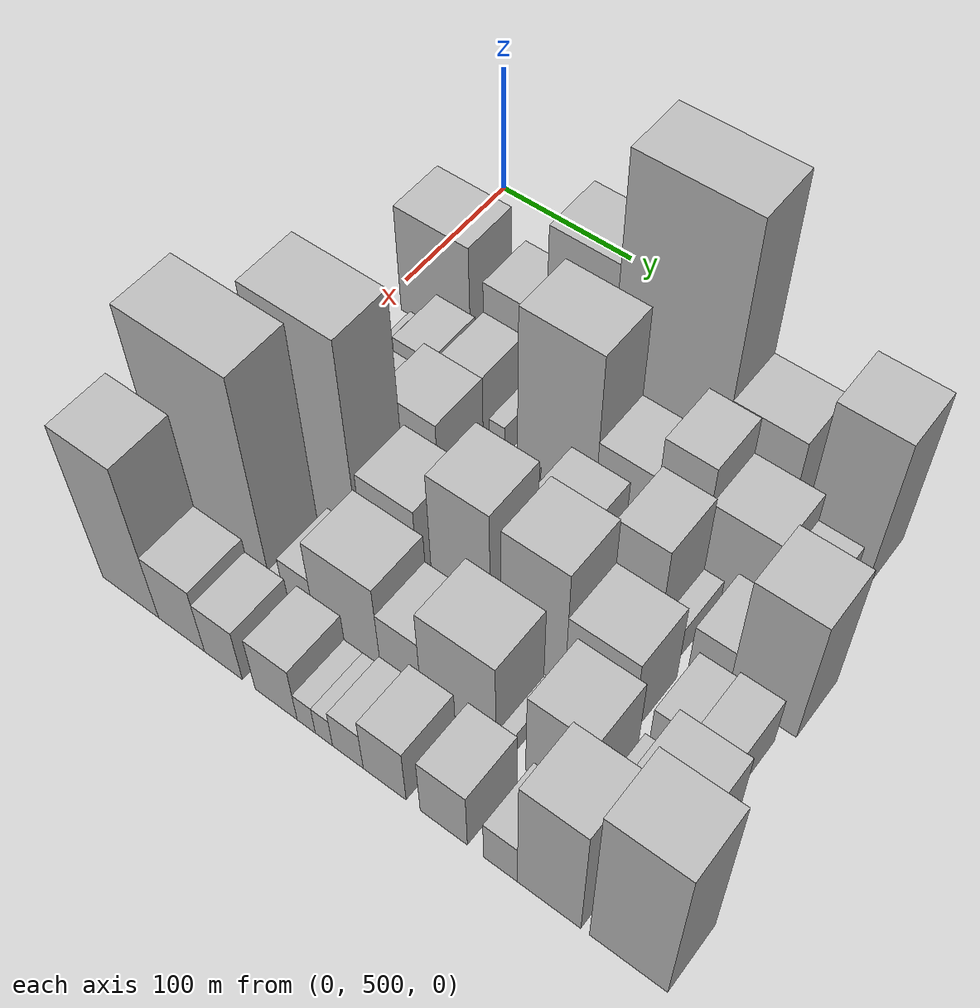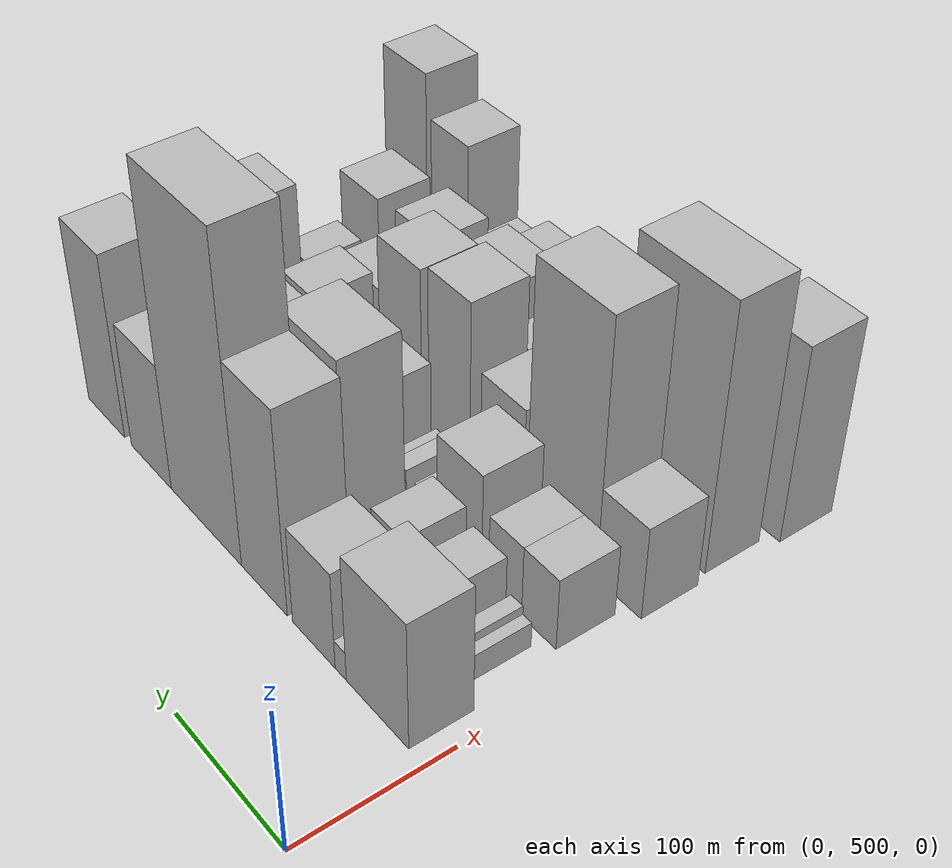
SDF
<sdf version="1.6">
 <world name="default">
  <model name="building_41">
   <static>1</static>
   <pose>100.0000 539.8576 0 0.000000 0.000000 0.000000</pose>
   <link name="link">
    <pose>0 0 45.00 0 0 0</pose>
    <collision name="collision"><geometry><box><size>40.0000 53.8695 90.0000</size></box></geometry></collision>
    <visual name="visual">
     <cast_shadows>0</cast_shadows>
     <geometry><box><size>40.0000 53.8695 90.0000</size></box></geometry>
     <material>
      <script>
       <uri>model://HANNAS_wall/materials/scripts</uri>
       <uri>model://HANNAS_wall/materials/textures</uri>
       <name>vrc/HANNAS_wall</name>
      </script>
     </material>
    </visual>
   </link>
  </model>
  <model name="building_42">
   <static>1</static>
   <pose>100.0000 571.8155 0 0.000000 0.000000 0.000000</pose>
   <link name="link">
    <pose>0 0 10.50 0 0 0</pose>
    <collision name="collision"><geometry><box><size>40.0000 10.0463 21.0000</size></box></geometry></collision>
    <visual name="visual">
     <cast_shadows>0</cast_shadows>
     <geometry><box><size>40.0000 10.0463 21.0000</size></box></geometry>
     <material>
      <script>
       <uri>model://HANNAS_wall/materials/scripts</uri>
       <uri>model://HANNAS_wall/materials/textures</uri>
       <name>vrc/HANNAS_wall</name>
      </script>
     </material>
    </visual>
   </link>
  </model>
  <model name="building_43">
   <static>1</static>
   <pose>100.0000 596.6419 0 0.000000 0.000000 0.000000</pose>
   <link name="link">
    <pose>0 0 34.50 0 0 0</pose>
    <collision name="collision"><geometry><box><size>40.0000 39.6066 69.0000</size></box></geometry></collision>
    <visual name="visual">
     <cast_shadows>0</cast_shadows>
     <geometry><box><size>40.0000 39.6066 69.0000</size></box></geometry>
     <material>
      <script>
       <uri>model://HANNAS_wall/materials/scripts</uri>
       <uri>model://HANNAS_wall/materials/textures</uri>
       <name>vrc/HANNAS_wall</name>
      </script>
     </material>
    </visual>
   </link>
  </model>
  <model name="building_44">
   <static>1</static>
   <pose>100.0000 643.9634 0 0.000000 0.000000 0.000000</pose>
   <link name="link">
    <pose>0 0 72.00 0 0 0</pose>
    <collision name="collision"><geometry><box><size>40.0000 45.0365 144.0000</size></box></geometry></collision>
    <visual name="visual">
     <cast_shadows>0</cast_shadows>
     <geometry><box><size>40.0000 45.0365 144.0000</size></box></geometry>
     <material>
      <script>
       <uri>model://HANNAS_wall/materials/scripts</uri>
       <uri>model://HANNAS_wall/materials/textures</uri>
       <name>vrc/HANNAS_wall</name>
      </script>
     </material>
    </visual>
   </link>
  </model>
  <model name="building_45">
   <static>1</static>
   <pose>100.0000 703.7926 0 0.000000 0.000000 0.000000</pose>
   <link name="link">
    <pose>0 0 112.50 0 0 0</pose>
    <collision name="collision"><geometry><box><size>40.0000 74.6218 225.0000</size></box></geometry></collision>
    <visual name="visual">
     <cast_shadows>0</cast_shadows>
     <geometry><box><size>40.0000 74.6218 225.0000</size></box></geometry>
     <material>
      <script>
       <uri>model://HANNAS_wall/materials/scripts</uri>
       <uri>model://HANNAS_wall/materials/textures</uri>
       <name>vrc/HANNAS_wall</name>
      </script>
     </material>
    </visual>
   </link>
  </model>
  <model name="building_46">
   <static>1</static>
   <pose>100.0000 763.8912 0 0.000000 0.000000 0.000000</pose>
   <link name="link">
    <pose>0 0 45.00 0 0 0</pose>
    <collision name="collision"><geometry><box><size>40.0000 45.5754 90.0000</size></box></geometry></collision>
    <visual name="visual">
     <cast_shadows>0</cast_shadows>
     <geometry><box><size>40.0000 45.5754 90.0000</size></box></geometry>
     <material>
      <script>
       <uri>model://HANNAS_wall/materials/scripts</uri>
       <uri>model://HANNAS_wall/materials/textures</uri>
       <name>vrc/HANNAS_wall</name>
      </script>
     </material>
    </visual>
   </link>
  </model>
  <model name="building_47">
   <static>1</static>
   <pose>100.0000 816.3652 0 0.000000 0.000000 0.000000</pose>
   <link name="link">
    <pose>0 0 66.00 0 0 0</pose>
    <collision name="collision"><geometry><box><size>40.0000 43.3727 132.0000</size></box></geometry></collision>
    <visual name="visual">
     <cast_shadows>0</cast_shadows>
     <geometry><box><size>40.0000 43.3727 132.0000</size></box></geometry>
     <material>
      <script>
       <uri>model://HANNAS_wall/materials/scripts</uri>
       <uri>model://HANNAS_wall/materials/textures</uri>
       <name>vrc/HANNAS_wall</name>
      </script>
     </material>
    </visual>
   </link>
  </model>
  <model name="building_85">
   <static>1</static>
   <pose>149.0000 532.1612 0 0.000000 0.000000 0.000000</pose>
   <link name="link">
    <pose>0 0 9.00 0 0 0</pose>
    <collision name="collision"><geometry><box><size>40.0000 7.4489 18.0000</size></box></geometry></collision>
    <visual name="visual">
     <cast_shadows>0</cast_shadows>
     <geometry><box><size>40.0000 7.4489 18.0000</size></box></geometry>
     <material>
      <script>
       <uri>model://HANNAS_wall/materials/scripts</uri>
       <uri>model://HANNAS_wall/materials/textures</uri>
       <name>vrc/HANNAS_wall</name>
      </script>
     </material>
    </visual>
   </link>
  </model>
  <model name="building_86">
   <static>1</static>
   <pose>149.0000 540.8552 0 0.000000 0.000000 0.000000</pose>
   <link name="link">
    <pose>0 0 12.00 0 0 0</pose>
    <collision name="collision"><geometry><box><size>40.0000 9.9391 24.0000</size></box></geometry></collision>
    <visual name="visual">
     <cast_shadows>0</cast_shadows>
     <geometry><box><size>40.0000 9.9391 24.0000</size></box></geometry>
     <material>
      <script>
       <uri>model://HANNAS_wall/materials/scripts</uri>
       <uri>model://HANNAS_wall/materials/textures</uri>
       <name>vrc/HANNAS_wall</name>
      </script>
     </material>
    </visual>
   </link>
  </model>
  <model name="building_87">
   <static>1</static>
   <pose>149.0000 563.7792 0 0.000000 0.000000 0.000000</pose>
   <link name="link">
    <pose>0 0 24.00 0 0 0</pose>
    <collision name="collision"><geometry><box><size>40.0000 27.9090 48.0000</size></box></geometry></collision>
    <visual name="visual">
     <cast_shadows>0</cast_shadows>
     <geometry><box><size>40.0000 27.9090 48.0000</size></box></geometry>
     <material>
      <script>
       <uri>model://HANNAS_wall/materials/scripts</uri>
       <uri>model://HANNAS_wall/materials/textures</uri>
       <name>vrc/HANNAS_wall</name>
      </script>
     </material>
    </visual>
   </link>
  </model>
  <model name="building_88">
   <static>1</static>
   <pose>149.0000 580.9010 0 0.000000 0.000000 0.000000</pose>
   <link name="link">
    <pose>0 0 7.50 0 0 0</pose>
    <collision name="collision"><geometry><box><size>40.0000 6.3346 15.0000</size></box></geometry></collision>
    <visual name="visual">
     <cast_shadows>0</cast_shadows>
     <geometry><box><size>40.0000 6.3346 15.0000</size></box></geometry>
     <material>
      <script>
       <uri>model://HANNAS_wall/materials/scripts</uri>
       <uri>model://HANNAS_wall/materials/textures</uri>
       <name>vrc/HANNAS_wall</name>
      </script>
     </material>
    </visual>
   </link>
  </model>
  <model name="building_89">
   <static>1</static>
   <pose>149.0000 598.3968 0 0.000000 0.000000 0.000000</pose>
   <link name="link">
    <pose>0 0 28.50 0 0 0</pose>
    <collision name="collision"><geometry><box><size>40.0000 28.6569 57.0000</size></box></geometry></collision>
    <visual name="visual">
     <cast_shadows>0</cast_shadows>
     <geometry><box><size>40.0000 28.6569 57.0000</size></box></geometry>
     <material>
      <script>
       <uri>model://HANNAS_wall/materials/scripts</uri>
       <uri>model://HANNAS_wall/materials/textures</uri>
       <name>vrc/HANNAS_wall</name>
      </script>
     </material>
    </visual>
   </link>
  </model>
  <model name="building_90">
   <static>1</static>
   <pose>149.0000 624.2394 0 0.000000 0.000000 0.000000</pose>
   <link name="link">
    <pose>0 0 13.50 0 0 0</pose>
    <collision name="collision"><geometry><box><size>40.0000 11.0282 27.0000</size></box></geometry></collision>
    <visual name="visual">
     <cast_shadows>0</cast_shadows>
     <geometry><box><size>40.0000 11.0282 27.0000</size></box></geometry>
     <material>
      <script>
       <uri>model://HANNAS_wall/materials/scripts</uri>
       <uri>model://HANNAS_wall/materials/textures</uri>
       <name>vrc/HANNAS_wall</name>
      </script>
     </material>
    </visual>
   </link>
  </model>
  <model name="building_91">
   <static>1</static>
   <pose>149.0000 665.6713 0 0.000000 0.000000 0.000000</pose>
   <link name="link">
    <pose>0 0 69.00 0 0 0</pose>
    <collision name="collision"><geometry><box><size>40.0000 53.8358 138.0000</size></box></geometry></collision>
    <visual name="visual">
     <cast_shadows>0</cast_shadows>
     <geometry><box><size>40.0000 53.8358 138.0000</size></box></geometry>
     <material>
      <script>
       <uri>model://HANNAS_wall/materials/scripts</uri>
       <uri>model://HANNAS_wall/materials/textures</uri>
       <name>vrc/HANNAS_wall</name>
      </script>
     </material>
    </visual>
   </link>
  </model>
  <model name="building_92">
   <static>1</static>
   <pose>149.0000 711.7109 0 0.000000 0.000000 0.000000</pose>
   <link name="link">
    <pose>0 0 33.00 0 0 0</pose>
    <collision name="collision"><geometry><box><size>40.0000 38.2434 66.0000</size></box></geometry></collision>
    <visual name="visual">
     <cast_shadows>0</cast_shadows>
     <geometry><box><size>40.0000 38.2434 66.0000</size></box></geometry>
     <material>
      <script>
       <uri>model://HANNAS_wall/materials/scripts</uri>
       <uri>model://HANNAS_wall/materials/textures</uri>
       <name>vrc/HANNAS_wall</name>
      </script>
     </material>
    </visual>
   </link>
  </model>
  <model name="building_93">
   <static>1</static>
   <pose>149.0000 746.6212 0 0.000000 0.000000 0.000000</pose>
   <link name="link">
    <pose>0 0 51.00 0 0 0</pose>
    <collision name="collision"><geometry><box><size>40.0000 31.5770 102.0000</size></box></geometry></collision>
    <visual name="visual">
     <cast_shadows>0</cast_shadows>
     <geometry><box><size>40.0000 31.5770 102.0000</size></box></geometry>
     <material>
      <script>
       <uri>model://HANNAS_wall/materials/scripts</uri>
       <uri>model://HANNAS_wall/materials/textures</uri>
       <name>vrc/HANNAS_wall</name>
      </script>
     </material>
    </visual>
   </link>
  </model>
  <model name="building_94">
   <static>1</static>
   <pose>149.0000 783.8165 0 0.000000 0.000000 0.000000</pose>
   <link name="link">
    <pose>0 0 36.00 0 0 0</pose>
    <collision name="collision"><geometry><box><size>40.0000 42.8137 72.0000</size></box></geometry></collision>
    <visual name="visual">
     <cast_shadows>0</cast_shadows>
     <geometry><box><size>40.0000 42.8137 72.0000</size></box></geometry>
     <material>
      <script>
       <uri>model://HANNAS_wall/materials/scripts</uri>
       <uri>model://HANNAS_wall/materials/textures</uri>
       <name>vrc/HANNAS_wall</name>
      </script>
     </material>
    </visual>
   </link>
  </model>
  <model name="building_95">
   <static>1</static>
   <pose>149.0000 819.0038 0 0.000000 0.000000 0.000000</pose>
   <link name="link">
    <pose>0 0 24.00 0 0 0</pose>
    <collision name="collision"><geometry><box><size>40.0000 27.5608 48.0000</size></box></geometry></collision>
    <visual name="visual">
     <cast_shadows>0</cast_shadows>
     <geometry><box><size>40.0000 27.5608 48.0000</size></box></geometry>
     <material>
      <script>
       <uri>model://HANNAS_wall/materials/scripts</uri>
       <uri>model://HANNAS_wall/materials/textures</uri>
       <name>vrc/HANNAS_wall</name>
      </script>
     </material>
    </visual>
   </link>
  </model>
  <model name="building_136">
   <static>1</static>
   <pose>198.0000 533.3489 0 0.000000 0.000000 0.000000</pose>
   <link name="link">
    <pose>0 0 25.50 0 0 0</pose>
    <collision name="collision"><geometry><box><size>40.0000 28.4563 51.0000</size></box></geometry></collision>
    <visual name="visual">
     <cast_shadows>0</cast_shadows>
     <geometry><box><size>40.0000 28.4563 51.0000</size></box></geometry>
     <material>
      <script>
       <uri>model://HANNAS_wall/materials/scripts</uri>
       <uri>model://HANNAS_wall/materials/textures</uri>
       <name>vrc/HANNAS_wall</name>
      </script>
     </material>
    </visual>
   </link>
  </model>
  <model name="building_137">
   <static>1</static>
   <pose>198.0000 561.6796 0 0.000000 0.000000 0.000000</pose>
   <link name="link">
    <pose>0 0 25.50 0 0 0</pose>
    <collision name="collision"><geometry><box><size>40.0000 28.2052 51.0000</size></box></geometry></collision>
    <visual name="visual">
     <cast_shadows>0</cast_shadows>
     <geometry><box><size>40.0000 28.2052 51.0000</size></box></geometry>
     <material>
      <script>
       <uri>model://HANNAS_wall/materials/scripts</uri>
       <uri>model://HANNAS_wall/materials/textures</uri>
       <name>vrc/HANNAS_wall</name>
      </script>
     </material>
    </visual>
   </link>
  </model>
  <model name="building_138">
   <static>1</static>
   <pose>198.0000 601.6888 0 0.000000 0.000000 0.000000</pose>
   <link name="link">
    <pose>0 0 37.50 0 0 0</pose>
    <collision name="collision"><geometry><box><size>40.0000 39.8132 75.0000</size></box></geometry></collision>
    <visual name="visual">
     <cast_shadows>0</cast_shadows>
     <geometry><box><size>40.0000 39.8132 75.0000</size></box></geometry>
     <material>
      <script>
       <uri>model://HANNAS_wall/materials/scripts</uri>
       <uri>model://HANNAS_wall/materials/textures</uri>
       <name>vrc/HANNAS_wall</name>
      </script>
     </material>
    </visual>
   </link>
  </model>
  <model name="building_139">
   <static>1</static>
   <pose>198.0000 636.9009 0 0.000000 0.000000 0.000000</pose>
   <link name="link">
    <pose>0 0 12.00 0 0 0</pose>
    <collision name="collision"><geometry><box><size>40.0000 10.6111 24.0000</size></box></geometry></collision>
    <visual name="visual">
     <cast_shadows>0</cast_shadows>
     <geometry><box><size>40.0000 10.6111 24.0000</size></box></geometry>
     <material>
      <script>
       <uri>model://HANNAS_wall/materials/scripts</uri>
       <uri>model://HANNAS_wall/materials/textures</uri>
       <name>vrc/HANNAS_wall</name>
      </script>
     </material>
    </visual>
   </link>
  </model>
  <model name="building_140">
   <static>1</static>
   <pose>198.0000 656.0282 0 0.000000 0.000000 0.000000</pose>
   <link name="link">
    <pose>0 0 13.50 0 0 0</pose>
    <collision name="collision"><geometry><box><size>40.0000 11.6434 27.0000</size></box></geometry></collision>
    <visual name="visual">
     <cast_shadows>0</cast_shadows>
     <geometry><box><size>40.0000 11.6434 27.0000</size></box></geometry>
     <material>
      <script>
       <uri>model://HANNAS_wall/materials/scripts</uri>
       <uri>model://HANNAS_wall/materials/textures</uri>
       <name>vrc/HANNAS_wall</name>
      </script>
     </material>
    </visual>
   </link>
  </model>
  <model name="building_141">
   <static>1</static>
   <pose>198.0000 672.5311 0 0.000000 0.000000 0.000000</pose>
   <link name="link">
    <pose>0 0 9.00 0 0 0</pose>
    <collision name="collision"><geometry><box><size>40.0000 7.3623 18.0000</size></box></geometry></collision>
    <visual name="visual">
     <cast_shadows>0</cast_shadows>
     <geometry><box><size>40.0000 7.3623 18.0000</size></box></geometry>
     <material>
      <script>
       <uri>model://HANNAS_wall/materials/scripts</uri>
       <uri>model://HANNAS_wall/materials/textures</uri>
       <name>vrc/HANNAS_wall</name>
      </script>
     </material>
    </visual>
   </link>
  </model>
  <model name="building_142">
   <static>1</static>
   <pose>198.0000 700.0748 0 0.000000 0.000000 0.000000</pose>
   <link name="link">
    <pose>0 0 31.50 0 0 0</pose>
    <collision name="collision"><geometry><box><size>40.0000 37.7250 63.0000</size></box></geometry></collision>
    <visual name="visual">
     <cast_shadows>0</cast_shadows>
     <geometry><box><size>40.0000 37.7250 63.0000</size></box></geometry>
     <material>
      <script>
       <uri>model://HANNAS_wall/materials/scripts</uri>
       <uri>model://HANNAS_wall/materials/textures</uri>
       <name>vrc/HANNAS_wall</name>
      </script>
     </material>
    </visual>
   </link>
  </model>
  <model name="building_143">
   <static>1</static>
   <pose>198.0000 727.6551 0 0.000000 0.000000 0.000000</pose>
   <link name="link">
    <pose>0 0 15.00 0 0 0</pose>
    <collision name="collision"><geometry><box><size>40.0000 17.4356 30.0000</size></box></geometry></collision>
    <visual name="visual">
     <cast_shadows>0</cast_shadows>
     <geometry><box><size>40.0000 17.4356 30.0000</size></box></geometry>
     <material>
      <script>
       <uri>model://HANNAS_wall/materials/scripts</uri>
       <uri>model://HANNAS_wall/materials/textures</uri>
       <name>vrc/HANNAS_wall</name>
      </script>
     </material>
    </visual>
   </link>
  </model>
  <model name="building_144">
   <static>1</static>
   <pose>198.0000 752.6015 0 0.000000 0.000000 0.000000</pose>
   <link name="link">
    <pose>0 0 46.50 0 0 0</pose>
    <collision name="collision"><geometry><box><size>40.0000 32.4572 93.0000</size></box></geometry></collision>
    <visual name="visual">
     <cast_shadows>0</cast_shadows>
     <geometry><box><size>40.0000 32.4572 93.0000</size></box></geometry>
     <material>
      <script>
       <uri>model://HANNAS_wall/materials/scripts</uri>
       <uri>model://HANNAS_wall/materials/textures</uri>
       <name>vrc/HANNAS_wall</name>
      </script>
     </material>
    </visual>
   </link>
  </model>
  <model name="building_145">
   <static>1</static>
   <pose>198.0000 775.1160 0 0.000000 0.000000 0.000000</pose>
   <link name="link">
    <pose>0 0 13.50 0 0 0</pose>
    <collision name="collision"><geometry><box><size>40.0000 12.5717 27.0000</size></box></geometry></collision>
    <visual name="visual">
     <cast_shadows>0</cast_shadows>
     <geometry><box><size>40.0000 12.5717 27.0000</size></box></geometry>
     <material>
      <script>
       <uri>model://HANNAS_wall/materials/scripts</uri>
       <uri>model://HANNAS_wall/materials/textures</uri>
       <name>vrc/HANNAS_wall</name>
      </script>
     </material>
    </visual>
   </link>
  </model>
  <model name="building_146">
   <static>1</static>
   <pose>198.0000 800.6657 0 0.000000 0.000000 0.000000</pose>
   <link name="link">
    <pose>0 0 21.00 0 0 0</pose>
    <collision name="collision"><geometry><box><size>40.0000 24.5278 42.0000</size></box></geometry></collision>
    <visual name="visual">
     <cast_shadows>0</cast_shadows>
     <geometry><box><size>40.0000 24.5278 42.0000</size></box></geometry>
     <material>
      <script>
       <uri>model://HANNAS_wall/materials/scripts</uri>
       <uri>model://HANNAS_wall/materials/textures</uri>
       <name>vrc/HANNAS_wall</name>
      </script>
     </material>
    </visual>
   </link>
  </model>
  <model name="building_147">
   <static>1</static>
   <pose>198.0000 833.6380 0 0.000000 0.000000 0.000000</pose>
   <link name="link">
    <pose>0 0 55.50 0 0 0</pose>
    <collision name="collision"><geometry><box><size>40.0000 41.4168 111.0000</size></box></geometry></collision>
    <visual name="visual">
     <cast_shadows>0</cast_shadows>
     <geometry><box><size>40.0000 41.4168 111.0000</size></box></geometry>
     <material>
      <script>
       <uri>model://HANNAS_wall/materials/scripts</uri>
       <uri>model://HANNAS_wall/materials/textures</uri>
       <name>vrc/HANNAS_wall</name>
      </script>
     </material>
    </visual>
   </link>
  </model>
  <model name="building_186">
   <static>1</static>
   <pose>247.0000 526.6676 0 0.000000 0.000000 0.000000</pose>
   <link name="link">
    <pose>0 0 33.00 0 0 0</pose>
    <collision name="collision"><geometry><box><size>40.0000 36.1590 66.0000</size></box></geometry></collision>
    <visual name="visual">
     <cast_shadows>0</cast_shadows>
     <geometry><box><size>40.0000 36.1590 66.0000</size></box></geometry>
     <material>
      <script>
       <uri>model://HANNAS_wall/materials/scripts</uri>
       <uri>model://HANNAS_wall/materials/textures</uri>
       <name>vrc/HANNAS_wall</name>
      </script>
     </material>
    </visual>
   </link>
  </model>
  <model name="building_187">
   <static>1</static>
   <pose>247.0000 574.7906 0 0.000000 0.000000 0.000000</pose>
   <link name="link">
    <pose>0 0 90.00 0 0 0</pose>
    <collision name="collision"><geometry><box><size>40.0000 60.0870 180.0000</size></box></geometry></collision>
    <visual name="visual">
     <cast_shadows>0</cast_shadows>
     <geometry><box><size>40.0000 60.0870 180.0000</size></box></geometry>
     <material>
      <script>
       <uri>model://HANNAS_wall/materials/scripts</uri>
       <uri>model://HANNAS_wall/materials/textures</uri>
       <name>vrc/HANNAS_wall</name>
      </script>
     </material>
    </visual>
   </link>
  </model>
  <model name="building_188">
   <static>1</static>
   <pose>247.0000 627.1819 0 0.000000 0.000000 0.000000</pose>
   <link name="link">
    <pose>0 0 37.50 0 0 0</pose>
    <collision name="collision"><geometry><box><size>40.0000 38.6957 75.0000</size></box></geometry></collision>
    <visual name="visual">
     <cast_shadows>0</cast_shadows>
     <geometry><box><size>40.0000 38.6957 75.0000</size></box></geometry>
     <material>
      <script>
       <uri>model://HANNAS_wall/materials/scripts</uri>
       <uri>model://HANNAS_wall/materials/textures</uri>
       <name>vrc/HANNAS_wall</name>
      </script>
     </material>
    </visual>
   </link>
  </model>
  <model name="building_189">
   <static>1</static>
   <pose>247.0000 676.0969 0 0.000000 0.000000 0.000000</pose>
   <link name="link">
    <pose>0 0 58.50 0 0 0</pose>
    <collision name="collision"><geometry><box><size>40.0000 39.1342 117.0000</size></box></geometry></collision>
    <visual name="visual">
     <cast_shadows>0</cast_shadows>
     <geometry><box><size>40.0000 39.1342 117.0000</size></box></geometry>
     <material>
      <script>
       <uri>model://HANNAS_wall/materials/scripts</uri>
       <uri>model://HANNAS_wall/materials/textures</uri>
       <name>vrc/HANNAS_wall</name>
      </script>
     </material>
    </visual>
   </link>
  </model>
  <model name="building_190">
   <static>1</static>
   <pose>247.0000 723.3188 0 0.000000 0.000000 0.000000</pose>
   <link name="link">
    <pose>0 0 55.50 0 0 0</pose>
    <collision name="collision"><geometry><box><size>40.0000 41.3096 111.0000</size></box></geometry></collision>
    <visual name="visual">
     <cast_shadows>0</cast_shadows>
     <geometry><box><size>40.0000 41.3096 111.0000</size></box></geometry>
     <material>
      <script>
       <uri>model://HANNAS_wall/materials/scripts</uri>
       <uri>model://HANNAS_wall/materials/textures</uri>
       <name>vrc/HANNAS_wall</name>
      </script>
     </material>
    </visual>
   </link>
  </model>
  <model name="building_191">
   <static>1</static>
   <pose>247.0000 765.5100 0 0.000000 0.000000 0.000000</pose>
   <link name="link">
    <pose>0 0 36.00 0 0 0</pose>
    <collision name="collision"><geometry><box><size>40.0000 43.0729 72.0000</size></box></geometry></collision>
    <visual name="visual">
     <cast_shadows>0</cast_shadows>
     <geometry><box><size>40.0000 43.0729 72.0000</size></box></geometry>
     <material>
      <script>
       <uri>model://HANNAS_wall/materials/scripts</uri>
       <uri>model://HANNAS_wall/materials/textures</uri>
       <name>vrc/HANNAS_wall</name>
      </script>
     </material>
    </visual>
   </link>
  </model>
  <model name="building_192">
   <static>1</static>
   <pose>247.0000 808.7103 0 0.000000 0.000000 0.000000</pose>
   <link name="link">
    <pose>0 0 19.50 0 0 0</pose>
    <collision name="collision"><geometry><box><size>40.0000 23.3276 39.0000</size></box></geometry></collision>
    <visual name="visual">
     <cast_shadows>0</cast_shadows>
     <geometry><box><size>40.0000 23.3276 39.0000</size></box></geometry>
     <material>
      <script>
       <uri>model://HANNAS_wall/materials/scripts</uri>
       <uri>model://HANNAS_wall/materials/textures</uri>
       <name>vrc/HANNAS_wall</name>
      </script>
     </material>
    </visual>
   </link>
  </model>
  <model name="building_193">
   <static>1</static>
   <pose>247.0000 833.5315 0 0.000000 0.000000 0.000000</pose>
   <link name="link">
    <pose>0 0 22.50 0 0 0</pose>
    <collision name="collision"><geometry><box><size>40.0000 26.3148 45.0000</size></box></geometry></collision>
    <visual name="visual">
     <cast_shadows>0</cast_shadows>
     <geometry><box><size>40.0000 26.3148 45.0000</size></box></geometry>
     <material>
      <script>
       <uri>model://HANNAS_wall/materials/scripts</uri>
       <uri>model://HANNAS_wall/materials/textures</uri>
       <name>vrc/HANNAS_wall</name>
      </script>
     </material>
    </visual>
   </link>
  </model>
  <model name="building_236">
   <static>1</static>
   <pose>296.0000 548.5043 0 0.000000 0.000000 0.000000</pose>
   <link name="link">
    <pose>0 0 93.00 0 0 0</pose>
    <collision name="collision"><geometry><box><size>40.0000 71.8288 186.0000</size></box></geometry></collision>
    <visual name="visual">
     <cast_shadows>0</cast_shadows>
     <geometry><box><size>40.0000 71.8288 186.0000</size></box></geometry>
     <material>
      <script>
       <uri>model://HANNAS_wall/materials/scripts</uri>
       <uri>model://HANNAS_wall/materials/textures</uri>
       <name>vrc/HANNAS_wall</name>
      </script>
     </material>
    </visual>
   </link>
  </model>
  <model name="building_237">
   <static>1</static>
   <pose>296.0000 589.1149 0 0.000000 0.000000 0.000000</pose>
   <link name="link">
    <pose>0 0 10.50 0 0 0</pose>
    <collision name="collision"><geometry><box><size>40.0000 9.3925 21.0000</size></box></geometry></collision>
    <visual name="visual">
     <cast_shadows>0</cast_shadows>
     <geometry><box><size>40.0000 9.3925 21.0000</size></box></geometry>
     <material>
      <script>
       <uri>model://HANNAS_wall/materials/scripts</uri>
       <uri>model://HANNAS_wall/materials/textures</uri>
       <name>vrc/HANNAS_wall</name>
      </script>
     </material>
    </visual>
   </link>
  </model>
  <model name="building_238">
   <static>1</static>
   <pose>296.0000 604.4211 0 0.000000 0.000000 0.000000</pose>
   <link name="link">
    <pose>0 0 21.00 0 0 0</pose>
    <collision name="collision"><geometry><box><size>40.0000 21.2197 42.0000</size></box></geometry></collision>
    <visual name="visual">
     <cast_shadows>0</cast_shadows>
     <geometry><box><size>40.0000 21.2197 42.0000</size></box></geometry>
     <material>
      <script>
       <uri>model://HANNAS_wall/materials/scripts</uri>
       <uri>model://HANNAS_wall/materials/textures</uri>
       <name>vrc/HANNAS_wall</name>
      </script>
     </material>
    </visual>
   </link>
  </model>
  <model name="building_239">
   <static>1</static>
   <pose>296.0000 637.8852 0 0.000000 0.000000 0.000000</pose>
   <link name="link">
    <pose>0 0 39.00 0 0 0</pose>
    <collision name="collision"><geometry><box><size>40.0000 45.7086 78.0000</size></box></geometry></collision>
    <visual name="visual">
     <cast_shadows>0</cast_shadows>
     <geometry><box><size>40.0000 45.7086 78.0000</size></box></geometry>
     <material>
      <script>
       <uri>model://HANNAS_wall/materials/scripts</uri>
       <uri>model://HANNAS_wall/materials/textures</uri>
       <name>vrc/HANNAS_wall</name>
      </script>
     </material>
    </visual>
   </link>
  </model>
  <model name="building_240">
   <static>1</static>
   <pose>296.0000 674.3460 0 0.000000 0.000000 0.000000</pose>
   <link name="link">
    <pose>0 0 27.00 0 0 0</pose>
    <collision name="collision"><geometry><box><size>40.0000 27.2130 54.0000</size></box></geometry></collision>
    <visual name="visual">
     <cast_shadows>0</cast_shadows>
     <geometry><box><size>40.0000 27.2130 54.0000</size></box></geometry>
     <material>
      <script>
       <uri>model://HANNAS_wall/materials/scripts</uri>
       <uri>model://HANNAS_wall/materials/textures</uri>
       <name>vrc/HANNAS_wall</name>
      </script>
     </material>
    </visual>
   </link>
  </model>
  <model name="building_241">
   <static>1</static>
   <pose>296.0000 712.4010 0 0.000000 0.000000 0.000000</pose>
   <link name="link">
    <pose>0 0 42.00 0 0 0</pose>
    <collision name="collision"><geometry><box><size>40.0000 48.8971 84.0000</size></box></geometry></collision>
    <visual name="visual">
     <cast_shadows>0</cast_shadows>
     <geometry><box><size>40.0000 48.8971 84.0000</size></box></geometry>
     <material>
      <script>
       <uri>model://HANNAS_wall/materials/scripts</uri>
       <uri>model://HANNAS_wall/materials/textures</uri>
       <name>vrc/HANNAS_wall</name>
      </script>
     </material>
    </visual>
   </link>
  </model>
  <model name="building_242">
   <static>1</static>
   <pose>296.0000 741.2195 0 0.000000 0.000000 0.000000</pose>
   <link name="link">
    <pose>0 0 9.00 0 0 0</pose>
    <collision name="collision"><geometry><box><size>40.0000 8.7399 18.0000</size></box></geometry></collision>
    <visual name="visual">
     <cast_shadows>0</cast_shadows>
     <geometry><box><size>40.0000 8.7399 18.0000</size></box></geometry>
     <material>
      <script>
       <uri>model://HANNAS_wall/materials/scripts</uri>
       <uri>model://HANNAS_wall/materials/textures</uri>
       <name>vrc/HANNAS_wall</name>
      </script>
     </material>
    </visual>
   </link>
  </model>
  <model name="building_243">
   <static>1</static>
   <pose>296.0000 775.5981 0 0.000000 0.000000 0.000000</pose>
   <link name="link">
    <pose>0 0 39.00 0 0 0</pose>
    <collision name="collision"><geometry><box><size>40.0000 40.0173 78.0000</size></box></geometry></collision>
    <visual name="visual">
     <cast_shadows>0</cast_shadows>
     <geometry><box><size>40.0000 40.0173 78.0000</size></box></geometry>
     <material>
      <script>
       <uri>model://HANNAS_wall/materials/scripts</uri>
       <uri>model://HANNAS_wall/materials/textures</uri>
       <name>vrc/HANNAS_wall</name>
      </script>
     </material>
    </visual>
   </link>
  </model>
  <model name="building_244">
   <static>1</static>
   <pose>296.0000 806.4817 0 0.000000 0.000000 0.000000</pose>
   <link name="link">
    <pose>0 0 15.00 0 0 0</pose>
    <collision name="collision"><geometry><box><size>40.0000 15.7498 30.0000</size></box></geometry></collision>
    <visual name="visual">
     <cast_shadows>0</cast_shadows>
     <geometry><box><size>40.0000 15.7498 30.0000</size></box></geometry>
     <material>
      <script>
       <uri>model://HANNAS_wall/materials/scripts</uri>
       <uri>model://HANNAS_wall/materials/textures</uri>
       <name>vrc/HANNAS_wall</name>
      </script>
     </material>
    </visual>
   </link>
  </model>
  <model name="building_245">
   <static>1</static>
   <pose>296.0000 834.7275 0 0.000000 0.000000 0.000000</pose>
   <link name="link">
    <pose>0 0 37.50 0 0 0</pose>
    <collision name="collision"><geometry><box><size>40.0000 40.7418 75.0000</size></box></geometry></collision>
    <visual name="visual">
     <cast_shadows>0</cast_shadows>
     <geometry><box><size>40.0000 40.7418 75.0000</size></box></geometry>
     <material>
      <script>
       <uri>model://HANNAS_wall/materials/scripts</uri>
       <uri>model://HANNAS_wall/materials/textures</uri>
       <name>vrc/HANNAS_wall</name>
      </script>
     </material>
    </visual>
   </link>
  </model>
  <model name="building_287">
   <static>1</static>
   <pose>345.0000 526.4013 0 0.000000 0.000000 0.000000</pose>
   <link name="link">
    <pose>0 0 69.00 0 0 0</pose>
    <collision name="collision"><geometry><box><size>40.0000 42.0858 138.0000</size></box></geometry></collision>
    <visual name="visual">
     <cast_shadows>0</cast_shadows>
     <geometry><box><size>40.0000 42.0858 138.0000</size></box></geometry>
     <material>
      <script>
       <uri>model://HANNAS_wall/materials/scripts</uri>
       <uri>model://HANNAS_wall/materials/textures</uri>
       <name>vrc/HANNAS_wall</name>
      </script>
     </material>
    </visual>
   </link>
  </model>
  <model name="building_288">
   <static>1</static>
   <pose>345.0000 564.2228 0 0.000000 0.000000 0.000000</pose>
   <link name="link">
    <pose>0 0 30.00 0 0 0</pose>
    <collision name="collision"><geometry><box><size>40.0000 33.5573 60.0000</size></box></geometry></collision>
    <visual name="visual">
     <cast_shadows>0</cast_shadows>
     <geometry><box><size>40.0000 33.5573 60.0000</size></box></geometry>
     <material>
      <script>
       <uri>model://HANNAS_wall/materials/scripts</uri>
       <uri>model://HANNAS_wall/materials/textures</uri>
       <name>vrc/HANNAS_wall</name>
      </script>
     </material>
    </visual>
   </link>
  </model>
  <model name="building_289">
   <static>1</static>
   <pose>345.0000 594.4846 0 0.000000 0.000000 0.000000</pose>
   <link name="link">
    <pose>0 0 24.00 0 0 0</pose>
    <collision name="collision"><geometry><box><size>40.0000 26.9663 48.0000</size></box></geometry></collision>
    <visual name="visual">
     <cast_shadows>0</cast_shadows>
     <geometry><box><size>40.0000 26.9663 48.0000</size></box></geometry>
     <material>
      <script>
       <uri>model://HANNAS_wall/materials/scripts</uri>
       <uri>model://HANNAS_wall/materials/textures</uri>
       <name>vrc/HANNAS_wall</name>
      </script>
     </material>
    </visual>
   </link>
  </model>
  <model name="building_290">
   <static>1</static>
   <pose>345.0000 631.4927 0 0.000000 0.000000 0.000000</pose>
   <link name="link">
    <pose>0 0 25.50 0 0 0</pose>
    <collision name="collision"><geometry><box><size>40.0000 29.0499 51.0000</size></box></geometry></collision>
    <visual name="visual">
     <cast_shadows>0</cast_shadows>
     <geometry><box><size>40.0000 29.0499 51.0000</size></box></geometry>
     <material>
      <script>
       <uri>model://HANNAS_wall/materials/scripts</uri>
       <uri>model://HANNAS_wall/materials/textures</uri>
       <name>vrc/HANNAS_wall</name>
      </script>
     </material>
    </visual>
   </link>
  </model>
  <model name="building_291">
   <static>1</static>
   <pose>345.0000 652.2162 0 0.000000 0.000000 0.000000</pose>
   <link name="link">
    <pose>0 0 13.50 0 0 0</pose>
    <collision name="collision"><geometry><box><size>40.0000 12.3970 27.0000</size></box></geometry></collision>
    <visual name="visual">
     <cast_shadows>0</cast_shadows>
     <geometry><box><size>40.0000 12.3970 27.0000</size></box></geometry>
     <material>
      <script>
       <uri>model://HANNAS_wall/materials/scripts</uri>
       <uri>model://HANNAS_wall/materials/textures</uri>
       <name>vrc/HANNAS_wall</name>
      </script>
     </material>
    </visual>
   </link>
  </model>
  <model name="building_292">
   <static>1</static>
   <pose>345.0000 664.1819 0 0.000000 0.000000 0.000000</pose>
   <link name="link">
    <pose>0 0 13.50 0 0 0</pose>
    <collision name="collision"><geometry><box><size>40.0000 11.5345 27.0000</size></box></geometry></collision>
    <visual name="visual">
     <cast_shadows>0</cast_shadows>
     <geometry><box><size>40.0000 11.5345 27.0000</size></box></geometry>
     <material>
      <script>
       <uri>model://HANNAS_wall/materials/scripts</uri>
       <uri>model://HANNAS_wall/materials/textures</uri>
       <name>vrc/HANNAS_wall</name>
      </script>
     </material>
    </visual>
   </link>
  </model>
  <model name="building_293">
   <static>1</static>
   <pose>345.0000 680.1515 0 0.000000 0.000000 0.000000</pose>
   <link name="link">
    <pose>0 0 18.00 0 0 0</pose>
    <collision name="collision"><geometry><box><size>40.0000 20.4046 36.0000</size></box></geometry></collision>
    <visual name="visual">
     <cast_shadows>0</cast_shadows>
     <geometry><box><size>40.0000 20.4046 36.0000</size></box></geometry>
     <material>
      <script>
       <uri>model://HANNAS_wall/materials/scripts</uri>
       <uri>model://HANNAS_wall/materials/textures</uri>
       <name>vrc/HANNAS_wall</name>
      </script>
     </material>
    </visual>
   </link>
  </model>
  <model name="building_294">
   <static>1</static>
   <pose>345.0000 704.2944 0 0.000000 0.000000 0.000000</pose>
   <link name="link">
    <pose>0 0 25.50 0 0 0</pose>
    <collision name="collision"><geometry><box><size>40.0000 27.8813 51.0000</size></box></geometry></collision>
    <visual name="visual">
     <cast_shadows>0</cast_shadows>
     <geometry><box><size>40.0000 27.8813 51.0000</size></box></geometry>
     <material>
      <script>
       <uri>model://HANNAS_wall/materials/scripts</uri>
       <uri>model://HANNAS_wall/materials/textures</uri>
       <name>vrc/HANNAS_wall</name>
      </script>
     </material>
    </visual>
   </link>
  </model>
  <model name="building_295">
   <static>1</static>
   <pose>345.0000 742.1082 0 0.000000 0.000000 0.000000</pose>
   <link name="link">
    <pose>0 0 27.00 0 0 0</pose>
    <collision name="collision"><geometry><box><size>40.0000 29.7463 54.0000</size></box></geometry></collision>
    <visual name="visual">
     <cast_shadows>0</cast_shadows>
     <geometry><box><size>40.0000 29.7463 54.0000</size></box></geometry>
     <material>
      <script>
       <uri>model://HANNAS_wall/materials/scripts</uri>
       <uri>model://HANNAS_wall/materials/textures</uri>
       <name>vrc/HANNAS_wall</name>
      </script>
     </material>
    </visual>
   </link>
  </model>
  <model name="building_296">
   <static>1</static>
   <pose>345.0000 777.2479 0 0.000000 0.000000 0.000000</pose>
   <link name="link">
    <pose>0 0 19.50 0 0 0</pose>
    <collision name="collision"><geometry><box><size>40.0000 20.5331 39.0000</size></box></geometry></collision>
    <visual name="visual">
     <cast_shadows>0</cast_shadows>
     <geometry><box><size>40.0000 20.5331 39.0000</size></box></geometry>
     <material>
      <script>
       <uri>model://HANNAS_wall/materials/scripts</uri>
       <uri>model://HANNAS_wall/materials/textures</uri>
       <name>vrc/HANNAS_wall</name>
      </script>
     </material>
    </visual>
   </link>
  </model>
  <model name="building_297">
   <static>1</static>
   <pose>345.0000 806.4580 0 0.000000 0.000000 0.000000</pose>
   <link name="link">
    <pose>0 0 54.00 0 0 0</pose>
    <collision name="collision"><geometry><box><size>40.0000 37.8870 108.0000</size></box></geometry></collision>
    <visual name="visual">
     <cast_shadows>0</cast_shadows>
     <geometry><box><size>40.0000 37.8870 108.0000</size></box></geometry>
     <material>
      <script>
       <uri>model://HANNAS_wall/materials/scripts</uri>
       <uri>model://HANNAS_wall/materials/textures</uri>
       <name>vrc/HANNAS_wall</name>
      </script>
     </material>
    </visual>
   </link>
  </model>
  <model name="building_298">
   <static>1</static>
   <pose>345.0000 852.7676 0 0.000000 0.000000 0.000000</pose>
   <link name="link">
    <pose>0 0 69.00 0 0 0</pose>
    <collision name="collision"><geometry><box><size>40.0000 44.7324 138.0000</size></box></geometry></collision>
    <visual name="visual">
     <cast_shadows>0</cast_shadows>
     <geometry><box><size>40.0000 44.7324 138.0000</size></box></geometry>
     <material>
      <script>
       <uri>model://HANNAS_wall/materials/scripts</uri>
       <uri>model://HANNAS_wall/materials/textures</uri>
       <name>vrc/HANNAS_wall</name>
      </script>
     </material>
    </visual>
   </link>
  </model>
 </world>
</sdf>
